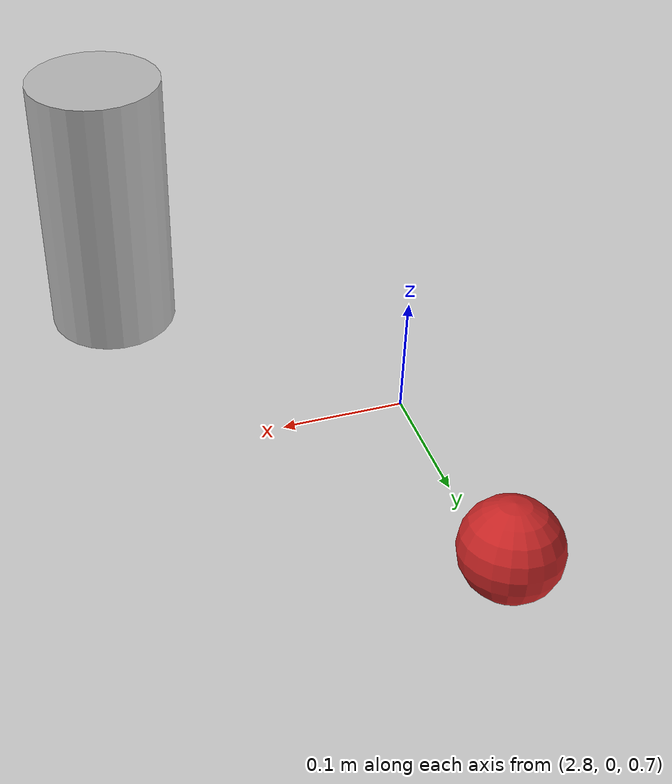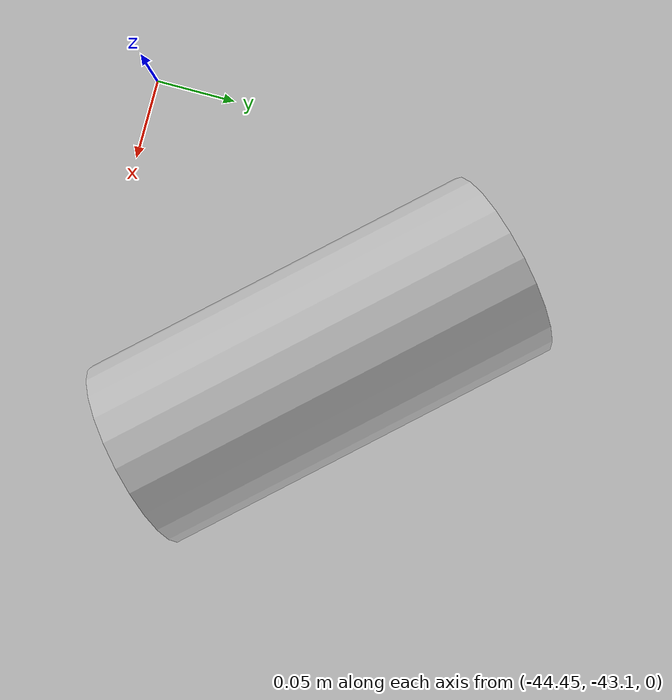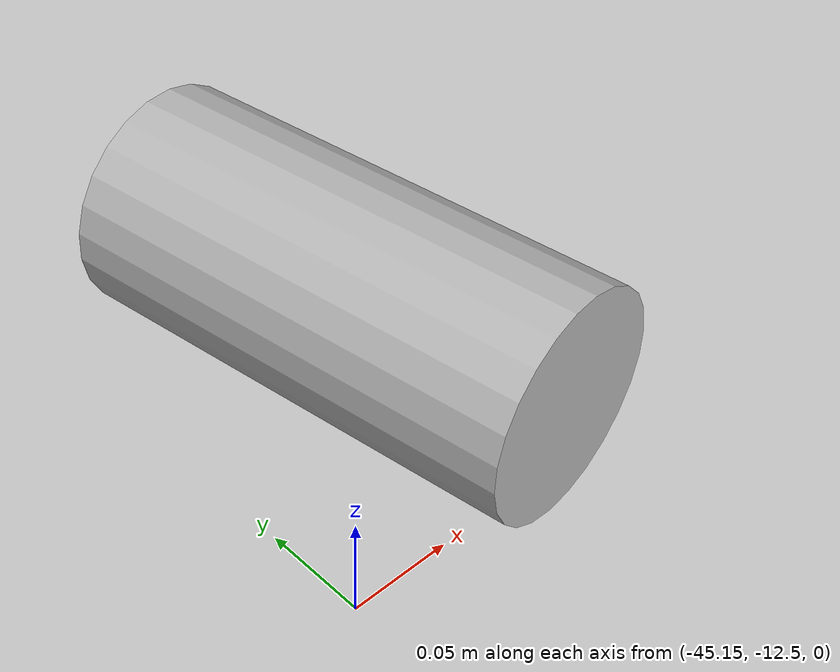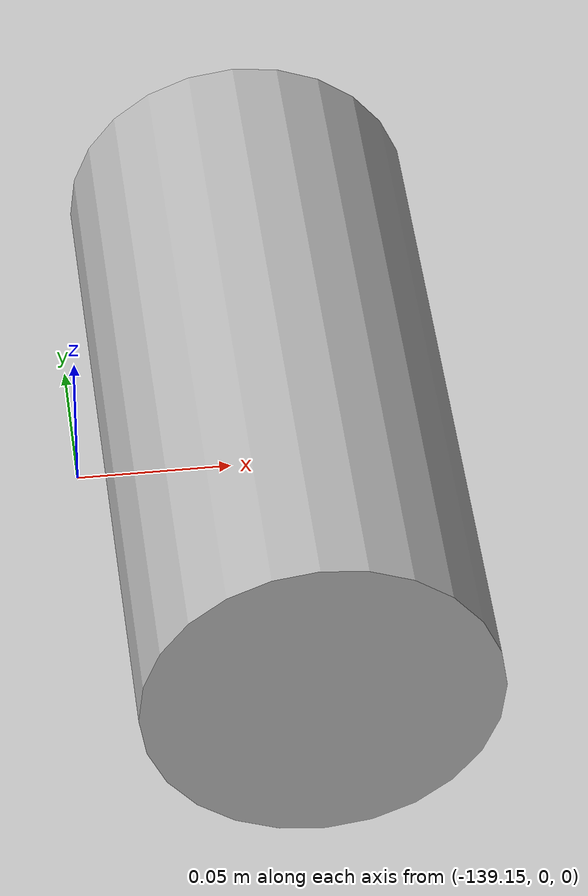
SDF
<sdf version="1.6">
 <world name="default">
  <model name="ground_plane">
   <static>1</static>
   <link name="link">
    <collision name="collision">
     <geometry><plane><normal>0 0 1</normal><size>100 100</size></plane></geometry>
     <surface><friction><ode><mu>100</mu><mu2>50</mu2></ode></friction></surface>
    </collision>
    <visual name="visual">
     <cast_shadows>0</cast_shadows>
     <geometry><plane><normal>0 0 1</normal><size>100 100</size></plane></geometry>
     <material>
      <script><uri>file://media/materials/scripts/gazebo.material</uri><name>Gazebo/Grey</name></script>
     </material>
    </visual>
   </link>
  </model>
  <light name="sun" type="directional">
   <pose>0 0 10 0 -0 0</pose>
   <diffuse>0.8 0.8 0.8 1</diffuse>
   <specular>0.2 0.2 0.2 1</specular>
   <attenuation>
    <range>1000</range>
    <constant>0.9</constant>
    <linear>0.01</linear>
    <quadratic>0.001</quadratic>
   </attenuation>
   <direction>-0.5 0.1 -0.9</direction>
  </light>
  <model name="cricket_ball">
   <link name="link">
    <pose>0 0 0.0375 0 -0 0</pose>
    <inertial>
     <mass>0.1467</mass>
     <inertia>
      <ixx>8.25187e-05</ixx>
      <ixy>0</ixy>
      <ixz>0</ixz>
      <iyy>8.25187e-05</iyy>
      <iyz>0</iyz>
      <izz>8.25187e-05</izz>
     </inertia>
    </inertial>
    <collision name="collision">
     <geometry><sphere><radius>0.0375</radius></sphere></geometry>
     <surface>
      <contact>
       <poissons_ratio>0.347</poissons_ratio>
       <elastic_modulus>8.8e+09</elastic_modulus>
       <ode><kp>100000</kp><kd>100</kd><max_vel>100</max_vel><min_depth>0.001</min_depth></ode>
      </contact>
      <friction>
       <torsional>
        <coefficient>1</coefficient>
        <use_patch_radius>0</use_patch_radius>
        <surface_radius>0.01</surface_radius>
       </torsional>
      </friction>
     </surface>
    </collision>
    <visual name="visual">
     <geometry><sphere><radius>0.0375</radius></sphere></geometry>
     <material>
      <script><uri>file://media/materials/scripts/gazebo.material</uri><name>Gazebo/Red</name></script>
     </material>
    </visual>
    <velocity_decay><linear>0</linear><angular>0.005</angular></velocity_decay>
   </link>
   <pose>2.80007 0.200064 0.694469 0.148504 -0.061902 0.131593</pose>
  </model>
  <model name="beer">
   <link name="link">
    <pose>0 0 0.115 0 -0 0</pose>
    <inertial>
     <mass>0.39</mass>
     <inertia><ixx>0.00058</ixx><ixy>0</ixy><ixz>0</ixz><iyy>0.00058</iyy><iyz>0</iyz><izz>0.00019</izz></inertia>
    </inertial>
    <collision name="collision">
     <geometry><cylinder><radius>0.055</radius><length>0.23</length></cylinder></geometry>
    </collision>
    <visual name="visual">
     <geometry><cylinder><radius>0.055</radius><length>0.23</length></cylinder></geometry>
     <material>
      <script>
       <uri>model://beer/materials/scripts</uri>
       <uri>model://beer/materials/textures</uri>
       <name>Beer/Diffuse</name>
      </script>
     </material>
    </visual>
   </link>
   <pose>3.00018 -0.198801 0.69499 1e-06 -2.7e-05 -0.027192</pose>
  </model>
  <gravity>0 0 -9.8</gravity>
  <magnetic_field>6e-06 2.3e-05 -4.2e-05</magnetic_field>
  <atmosphere type="adiabatic"/>
  <physics name="default_physics" default="0" type="ode">
   <max_step_size>0.001</max_step_size>
   <real_time_factor>1</real_time_factor>
   <real_time_update_rate>1000</real_time_update_rate>
  </physics>
  <scene><ambient>0.4 0.4 0.4 1</ambient><background>0.7 0.7 0.7 1</background><shadows>1</shadows></scene>
  <spherical_coordinates>
   <surface_model>EARTH_WGS84</surface_model>
   <latitude_deg>0</latitude_deg>
   <longitude_deg>0</longitude_deg>
   <elevation>0</elevation>
   <heading_deg>0</heading_deg>
  </spherical_coordinates>
  <model name="beer_0">
   <link name="link">
    <pose>0 0 0.115 0 -0 0</pose>
    <inertial>
     <mass>0.39</mass>
     <inertia><ixx>0.00058</ixx><ixy>0</ixy><ixz>0</ixz><iyy>0.00058</iyy><iyz>0</iyz><izz>0.00019</izz></inertia>
    </inertial>
    <collision name="collision">
     <geometry><cylinder><radius>0.055</radius><length>0.23</length></cylinder></geometry>
    </collision>
    <visual name="visual">
     <geometry><cylinder><radius>0.055</radius><length>0.23</length></cylinder></geometry>
     <material>
      <script>
       <uri>model://beer/materials/scripts</uri>
       <uri>model://beer/materials/textures</uri>
       <name>Beer/Diffuse</name>
      </script>
     </material>
    </visual>
   </link>
   <pose>-139.09 0.068877 0.055 -1.58666 -1.54843 -3.12573</pose>
  </model>
  <model name="beer_1">
   <link name="link">
    <pose>0 0 0.115 0 -0 0</pose>
    <inertial>
     <mass>0.39</mass>
     <inertia><ixx>0.00058</ixx><ixy>0</ixy><ixz>0</ixz><iyy>0.00058</iyy><iyz>0</iyz><izz>0.00019</izz></inertia>
    </inertial>
    <collision name="collision">
     <geometry><cylinder><radius>0.055</radius><length>0.23</length></cylinder></geometry>
    </collision>
    <visual name="visual">
     <geometry><cylinder><radius>0.055</radius><length>0.23</length></cylinder></geometry>
     <material>
      <script>
       <uri>model://beer/materials/scripts</uri>
       <uri>model://beer/materials/textures</uri>
       <name>Beer/Diffuse</name>
      </script>
     </material>
    </visual>
   </link>
   <pose>-44.3872 -42.8718 0.055 1.57084 0.278337 0.742771</pose>
  </model>
  <model name="beer_2">
   <link name="link">
    <pose>0 0 0.115 0 -0 0</pose>
    <inertial>
     <mass>0.39</mass>
     <inertia><ixx>0.00058</ixx><ixy>0</ixy><ixz>0</ixz><iyy>0.00058</iyy><iyz>0</iyz><izz>0.00019</izz></inertia>
    </inertial>
    <collision name="collision">
     <geometry><cylinder><radius>0.055</radius><length>0.23</length></cylinder></geometry>
    </collision>
    <visual name="visual">
     <geometry><cylinder><radius>0.055</radius><length>0.23</length></cylinder></geometry>
     <material>
      <script>
       <uri>model://beer/materials/scripts</uri>
       <uri>model://beer/materials/textures</uri>
       <name>Beer/Diffuse</name>
      </script>
     </material>
    </visual>
   </link>
   <pose>-45.0809 -12.2884 0.054972 -1.56947 -1.47838 -2.98485</pose>
  </model>
 </world>
</sdf>
